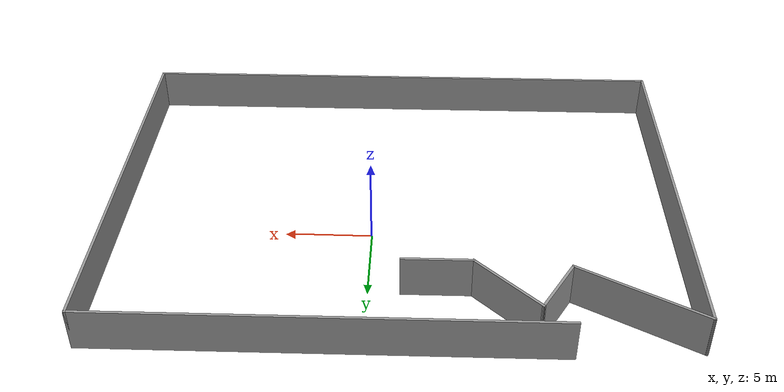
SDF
<?xml version='1.0'?>
<sdf version='1.6'>
<world name='default'>
    <light name='sun' type='directional'>
      <cast_shadows>1</cast_shadows>
      <pose frame=''>0 0 10 0 -0 0</pose>
      <diffuse>0.8 0.8 0.8 1</diffuse>
      <specular>0.2 0.2 0.2 1</specular>
      <attenuation>
        <range>1000</range>
        <constant>0.9</constant>
        <linear>0.01</linear>
        <quadratic>0.001</quadratic>
      </attenuation>
      <direction>-0.5 0.1 -0.9</direction>
    </light>
  <model name='Untitled'>
    <pose frame=''>-1.32737 -2.28198 0 0 -0 0</pose>
    <link name='Wall_15'>
      <collision name='Wall_15_Collision'>
        <geometry>
          <box>
            <size>25.75 0.15 2.5</size>
          </box>
        </geometry>
        <pose frame=''>0 0 1.25 0 -0 0</pose>
      </collision>
      <visual name='Wall_15_Visual'>
        <pose frame=''>0 0 1.25 0 -0 0</pose>
        <geometry>
          <box>
            <size>25.75 0.15 2.5</size>
          </box>
        </geometry>
        <material>
          <script>
            <uri>file://media/materials/scripts/gazebo.material</uri>
            <name>Gazebo/Grey</name>
          </script>
          <ambient>1 1 1 1</ambient>
        </material>
      </visual>
      <pose frame=''>3.38873 11.8 0 0 -0 0</pose>
    </link>
    <link name='Wall_16'>
      <collision name='Wall_16_Collision'>
        <geometry>
          <box>
            <size>23.75 0.15 2.5</size>
          </box>
        </geometry>
        <pose frame=''>0 0 1.25 0 -0 0</pose>
      </collision>
      <visual name='Wall_16_Visual'>
        <pose frame=''>0 0 1.25 0 -0 0</pose>
        <geometry>
          <box>
            <size>23.75 0.15 2.5</size>
          </box>
        </geometry>
        <material>
          <script>
            <uri>file://media/materials/scripts/gazebo.material</uri>
            <name>Gazebo/Grey</name>
          </script>
          <ambient>1 1 1 1</ambient>
        </material>
      </visual>
      <pose frame=''>16.1887 0 0 0 0 -1.5708</pose>
    </link>
    <link name='Wall_17'>
      <collision name='Wall_17_Collision'>
        <geometry>
          <box>
            <size>32.5 0.15 2.5</size>
          </box>
        </geometry>
        <pose frame=''>0 0 1.25 0 -0 0</pose>
      </collision>
      <visual name='Wall_17_Visual'>
        <pose frame=''>0 0 1.25 0 -0 0</pose>
        <geometry>
          <box>
            <size>32.5 0.15 2.5</size>
          </box>
        </geometry>
        <material>
          <script>
            <uri>file://media/materials/scripts/gazebo.material</uri>
            <name>Gazebo/Grey</name>
          </script>
          <ambient>1 1 1 1</ambient>
        </material>
      </visual>
      <pose frame=''>0.013725 -11.8 0 0 -0 3.14159</pose>
    </link>
    <link name='Wall_18'>
      <collision name='Wall_18_Collision'>
        <geometry>
          <box>
            <size>23.25 0.15 2.5</size>
          </box>
        </geometry>
        <pose frame=''>0 0 1.25 0 -0 0</pose>
      </collision>
      <visual name='Wall_18_Visual'>
        <pose frame=''>0 0 1.25 0 -0 0</pose>
        <geometry>
          <box>
            <size>23.25 0.15 2.5</size>
          </box>
        </geometry>
        <material>
          <script>
            <uri>file://media/materials/scripts/gazebo.material</uri>
            <name>Gazebo/Grey</name>
          </script>
          <ambient>1 1 1 1</ambient>
        </material>
      </visual>
      <pose frame=''>-16.1613 -0.25 0 0 -0 1.5708</pose>
    </link>
    <link name='Wall_19'>
      <collision name='Wall_19_Collision'>
        <geometry>
          <box>
            <size>7.75 0.15 2.5</size>
          </box>
        </geometry>
        <pose frame=''>0 0 1.25 0 -0 0</pose>
      </collision>
      <visual name='Wall_19_Visual'>
        <pose frame=''>0 0 1.25 0 -0 0</pose>
        <geometry>
          <box>
            <size>7.75 0.15 2.5</size>
          </box>
        </geometry>
        <material>
          <script>
            <uri>file://media/materials/scripts/gazebo.material</uri>
            <name>Gazebo/Grey</name>
          </script>
          <ambient>1 1 1 1</ambient>
        </material>
      </visual>
      <pose frame=''>-12.8704 9.4 0 0 0 -0.523599</pose>
    </link>
    <link name='Wall_20'>
      <collision name='Wall_20_Collision'>
        <geometry>
          <box>
            <size>3.75 0.15 2.5</size>
          </box>
        </geometry>
        <pose frame=''>0 0 1.25 0 -0 0</pose>
      </collision>
      <visual name='Wall_20_Visual'>
        <pose frame=''>0 0 1.25 0 -0 0</pose>
        <geometry>
          <box>
            <size>3.75 0.15 2.5</size>
          </box>
        </geometry>
        <material>
          <script>
            <uri>file://media/materials/scripts/gazebo.material</uri>
            <name>Gazebo/Grey</name>
          </script>
          <ambient>1 1 1 1</ambient>
        </material>
      </visual>
      <pose frame=''>-8.67948 9.05885 0 0 -0 1.0472</pose>
    </link>
    <link name='Wall_21'>
      <collision name='Wall_21_Collision'>
        <geometry>
          <box>
            <size>5 0.15 2.5</size>
          </box>
        </geometry>
        <pose frame=''>0 0 1.25 0 -0 0</pose>
      </collision>
      <visual name='Wall_21_Visual'>
        <pose frame=''>0 0 1.25 0 -0 0</pose>
        <geometry>
          <box>
            <size>5 0.15 2.5</size>
          </box>
        </geometry>
        <material>
          <script>
            <uri>file://media/materials/scripts/gazebo.material</uri>
            <name>Gazebo/Grey</name>
          </script>
          <ambient>1 1 1 1</ambient>
        </material>
      </visual>
      <pose frame=''>-6.06475 8.90296 0 0 0 -0.785398</pose>
    </link>
    <link name='Wall_22'>
      <collision name='Wall_22_Collision'>
        <geometry>
          <box>
            <size>4 0.15 2.5</size>
          </box>
        </geometry>
        <pose frame=''>0 0 1.25 0 -0 0</pose>
      </collision>
      <visual name='Wall_22_Visual'>
        <pose frame=''>0 0 1.25 0 -0 0</pose>
        <geometry>
          <box>
            <size>4 0.15 2.5</size>
          </box>
        </geometry>
        <material>
          <script>
            <uri>file://media/materials/scripts/gazebo.material</uri>
            <name>Gazebo/Grey</name>
          </script>
          <ambient>1 1 1 1</ambient>
        </material>
      </visual>
      <pose frame=''>-2.42501 7.18822 0 0 -0 0</pose>
    </link>
    <static>1</static>
  </model>
</world>
</sdf>
